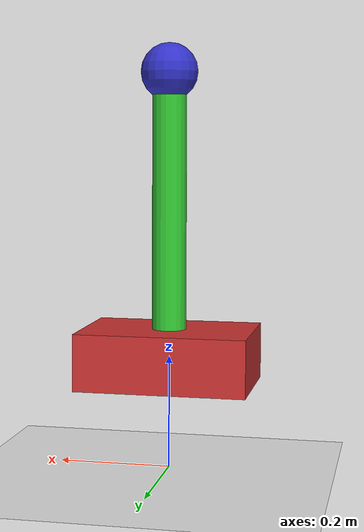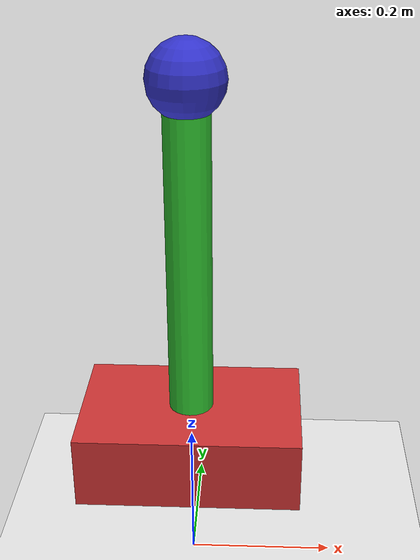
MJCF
<mujoco model="cartpole">
  <option timestep="0.01" gravity="0 0 -9.81"/>

  <visual>
    <global offwidth="640" offheight="480"/>
    <quality shadowsize="4096"/>
    <map force="0.1" znear="0.01"/>
  </visual>

  <asset>
    <texture name="grid" type="2d" builtin="checker" width="512" height="512" rgb1=".1 .2 .3" rgb2=".2 .3 .4"/>
    <material name="grid" texture="grid" texrepeat="1 1" texuniform="true" reflectance=".2"/>
  </asset>

  <worldbody>
    <light diffuse=".5 .5 .5" pos="0 0 3" dir="0 0 -1"/>
    <geom type="plane" size="1 1 0.1" rgba=".9 .9 .9 1" material="grid"/>

    <camera name="fixed" pos="2 -1.5 1" xyaxes="0.5 0.866 0 -0.433 0.25 0.866"/>
    <camera name="tracking" mode="trackcom" pos="0 -2 0.5" xyaxes="1 0 0 0 0.5 1"/>

    <body name="cart" pos="0 0 0.2">
      <joint name="slider" type="slide" axis="1 0 0" limited="true" range="-1 1"/>
      <geom name="cart" type="box" size="0.15 0.1 0.05" rgba="0.8 0.2 0.2 1" mass="1"/>

      <body name="pole" pos="0 0 0">
        <joint name="hinge" type="hinge" axis="0 1 0"/>
        <geom name="pole" type="capsule" fromto="0 0 0 0 0 0.5" size="0.03" rgba="0.2 0.8 0.2 1" mass="0.3"/>
        <geom name="pole_tip" type="sphere" pos="0 0 0.5" size="0.05" rgba="0.2 0.2 0.8 1" mass="0.1"/>
      </body>
    </body>
  </worldbody>

  <actuator>
    <motor joint="slider" name="slide" gear="100" ctrllimited="true" ctrlrange="-1 1"/>
  </actuator>
</mujoco>
